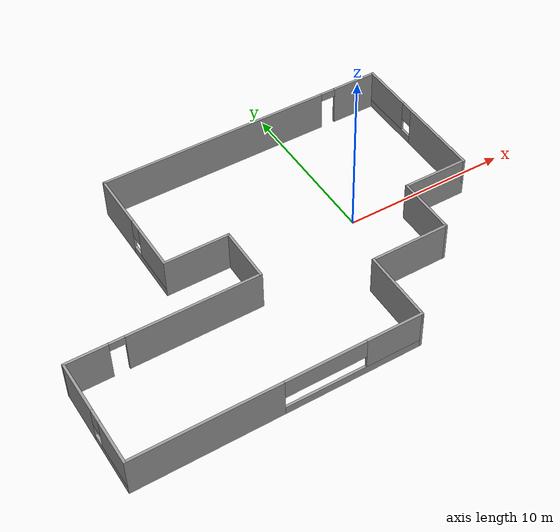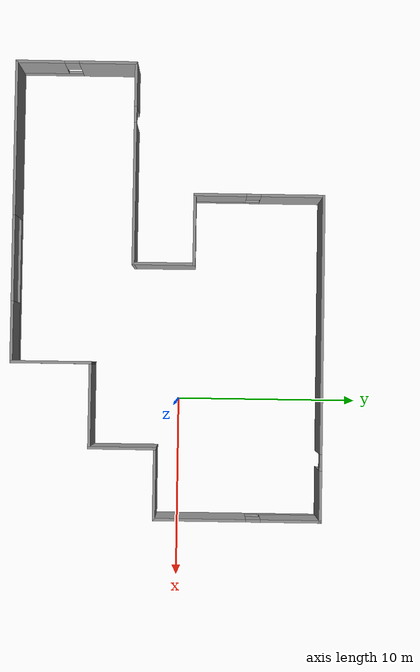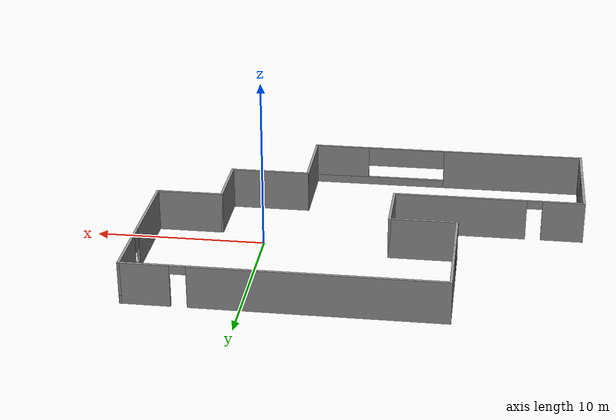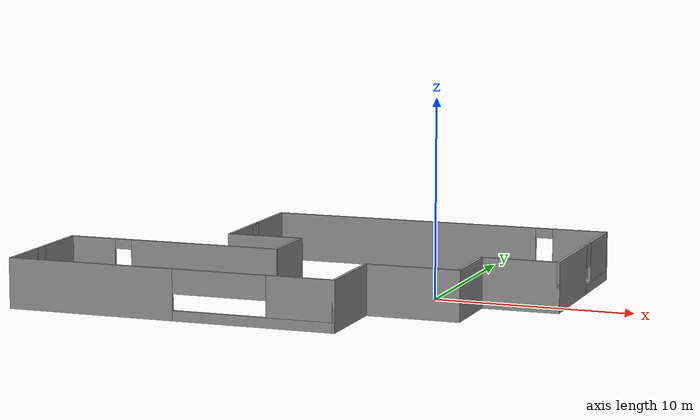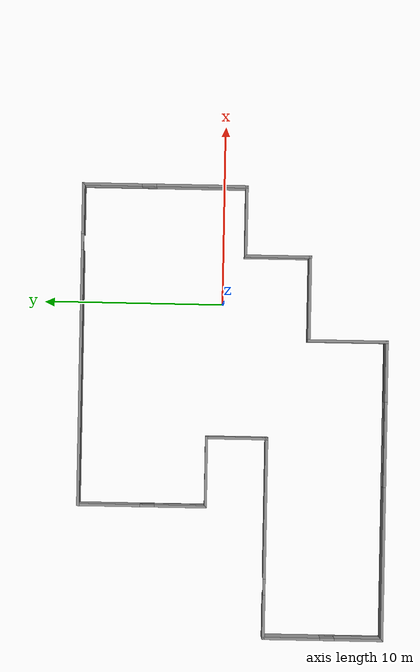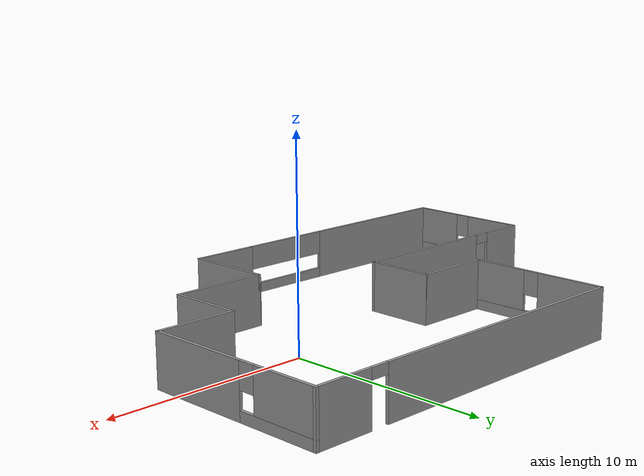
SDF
<?xml version='1.0'?>
<sdf version='1.7'>
  <model name='test'>
    <pose>-5.99 -0.635 0 0 -0 0</pose>
    <link name='Wall_0'>
      <collision name='Wall_0_Collision'>
        <geometry>
          <box>
            <size>4.75 0.15 2.5</size>
          </box>
        </geometry>
        <pose>0 0 1.25 0 -0 0</pose>
      </collision>
      <visual name='Wall_0_Visual'>
        <pose>0 0 1.25 0 -0 0</pose>
        <geometry>
          <box>
            <size>4.75 0.15 2.5</size>
          </box>
        </geometry>
        <material>
          <script>
            <uri>file://media/materials/scripts/gazebo.material</uri>
            <name>Gazebo/Grey</name>
          </script>
          <ambient>1 1 1 1</ambient>
        </material>
        <meta>
          <layer>0</layer>
        </meta>
      </visual>
      <pose>6.4 -4.175 0 0 -0 0</pose>
    </link>
    <link name='Wall_1'>
      <collision name='Wall_1_Collision'>
        <geometry>
          <box>
            <size>3.75 0.15 2.5</size>
          </box>
        </geometry>
        <pose>0 0 1.25 0 -0 0</pose>
      </collision>
      <visual name='Wall_1_Visual'>
        <pose>0 0 1.25 0 -0 0</pose>
        <geometry>
          <box>
            <size>3.75 0.15 2.5</size>
          </box>
        </geometry>
        <material>
          <script>
            <uri>file://media/materials/scripts/gazebo.material</uri>
            <name>Gazebo/Grey</name>
          </script>
          <ambient>1 1 1 1</ambient>
        </material>
        <meta>
          <layer>0</layer>
        </meta>
      </visual>
      <pose>8.7 -2.375 0 0 -0 1.5708</pose>
    </link>
    <link name='Wall_10'>
      <collision name='Wall_10_Collision'>
        <geometry>
          <box>
            <size>3.5 0.15 2.5</size>
          </box>
        </geometry>
        <pose>0 0 1.25 0 -0 0</pose>
      </collision>
      <visual name='Wall_10_Visual'>
        <pose>0 0 1.25 0 -0 0</pose>
        <geometry>
          <box>
            <size>3.5 0.15 2.5</size>
          </box>
        </geometry>
        <material>
          <script>
            <uri>file://media/materials/scripts/gazebo.material</uri>
            <name>Gazebo/Grey</name>
          </script>
          <ambient>1 1 1 1</ambient>
        </material>
        <meta>
          <layer>0</layer>
        </meta>
      </visual>
      <pose>-1.45 -0.25 0 0 -0 -1.5708</pose>
    </link>
    <link name='Wall_11'>
      <pose>-7 -1.925 0 0 -0 3.14159</pose>
      <visual name='Wall_11_Visual_0'>
        <pose>-1.69066 0 1.25 0 -0 0</pose>
        <geometry>
          <box>
            <size>7.86868 0.15 2.5</size>
          </box>
        </geometry>
        <material>
          <script>
            <uri>file://media/materials/scripts/gazebo.material</uri>
            <name>Gazebo/Grey</name>
          </script>
          <ambient>1 1 1 1</ambient>
        </material>
        <meta>
          <layer>0</layer>
        </meta>
      </visual>
      <collision name='Wall_11_Collision_0'>
        <geometry>
          <box>
            <size>7.86868 0.15 2.5</size>
          </box>
        </geometry>
        <pose>-1.69066 0 1.25 0 -0 0</pose>
      </collision>
      <visual name='Wall_11_Visual_1'>
        <pose>4.38434 0 1.25 0 -0 0</pose>
        <geometry>
          <box>
            <size>2.48132 0.15 2.5</size>
          </box>
        </geometry>
        <material>
          <script>
            <uri>file://media/materials/scripts/gazebo.material</uri>
            <name>Gazebo/Grey</name>
          </script>
          <ambient>1 1 1 1</ambient>
        </material>
        <meta>
          <layer>0</layer>
        </meta>
      </visual>
      <collision name='Wall_11_Collision_1'>
        <geometry>
          <box>
            <size>2.48132 0.15 2.5</size>
          </box>
        </geometry>
        <pose>4.38434 0 1.25 0 -0 0</pose>
      </collision>
      <visual name='Wall_11_Visual_2'>
        <pose>2.69368 0 2.25 0 -0 0</pose>
        <geometry>
          <box>
            <size>0.9 0.15 0.5</size>
          </box>
        </geometry>
        <material>
          <script>
            <uri>file://media/materials/scripts/gazebo.material</uri>
            <name>Gazebo/Grey</name>
          </script>
          <ambient>1 1 1 1</ambient>
        </material>
        <meta>
          <layer>0</layer>
        </meta>
      </visual>
      <collision name='Wall_11_Collision_2'>
        <geometry>
          <box>
            <size>0.9 0.15 0.5</size>
          </box>
        </geometry>
        <pose>2.69368 0 2.25 0 -0 0</pose>
      </collision>
    </link>
    <link name='Wall_12'>
      <pose>-12.55 -5.225 0 0 -0 -1.5708</pose>
      <visual name='Wall_12_Visual_0'>
        <pose>-1.76183 0 1.25 0 -0 0</pose>
        <geometry>
          <box>
            <size>3.22635 0.15 2.5</size>
          </box>
        </geometry>
        <material>
          <script>
            <uri>file://media/materials/scripts/gazebo.material</uri>
            <name>Gazebo/Grey</name>
          </script>
          <ambient>1 1 1 1</ambient>
        </material>
        <meta>
          <layer>0</layer>
        </meta>
      </visual>
      <collision name='Wall_12_Collision_0'>
        <geometry>
          <box>
            <size>3.22635 0.15 2.5</size>
          </box>
        </geometry>
        <pose>-1.76183 0 1.25 0 -0 0</pose>
      </collision>
      <visual name='Wall_12_Visual_1'>
        <pose>1.61317 0 0.25 0 -0 0</pose>
        <geometry>
          <box>
            <size>3.52365 0.15 0.5</size>
          </box>
        </geometry>
        <material>
          <script>
            <uri>file://media/materials/scripts/gazebo.material</uri>
            <name>Gazebo/Grey</name>
          </script>
          <ambient>1 1 1 1</ambient>
        </material>
        <meta>
          <layer>0</layer>
        </meta>
      </visual>
      <collision name='Wall_12_Collision_1'>
        <geometry>
          <box>
            <size>3.52365 0.15 0.5</size>
          </box>
        </geometry>
        <pose>1.61317 0 0.25 0 -0 0</pose>
      </collision>
      <visual name='Wall_12_Visual_2'>
        <pose>2.01317 0 1.5 0 -0 0</pose>
        <geometry>
          <box>
            <size>2.72365 0.15 2</size>
          </box>
        </geometry>
        <material>
          <script>
            <uri>file://media/materials/scripts/gazebo.material</uri>
            <name>Gazebo/Grey</name>
          </script>
          <ambient>1 1 1 1</ambient>
        </material>
        <meta>
          <layer>0</layer>
        </meta>
      </visual>
      <collision name='Wall_12_Collision_2'>
        <geometry>
          <box>
            <size>2.72365 0.15 2</size>
          </box>
        </geometry>
        <pose>2.01317 0 1.5 0 -0 0</pose>
      </collision>
      <visual name='Wall_12_Visual_3'>
        <pose>0.251346 0 1.9 0 -0 0</pose>
        <geometry>
          <box>
            <size>0.8 0.15 1.2</size>
          </box>
        </geometry>
        <material>
          <script>
            <uri>file://media/materials/scripts/gazebo.material</uri>
            <name>Gazebo/Grey</name>
          </script>
          <ambient>1 1 1 1</ambient>
        </material>
        <meta>
          <layer>0</layer>
        </meta>
      </visual>
      <collision name='Wall_12_Collision_3'>
        <geometry>
          <box>
            <size>0.8 0.15 1.2</size>
          </box>
        </geometry>
        <pose>0.251346 0 1.9 0 -0 0</pose>
      </collision>
    </link>
    <link name='Wall_13'>
      <pose>-4.25 -8.525 0 0 -0 0</pose>
      <visual name='Wall_13_Visual_0'>
        <pose>-4.08388 0 1.25 0 -0 0</pose>
        <geometry>
          <box>
            <size>8.58223 0.15 2.5</size>
          </box>
        </geometry>
        <material>
          <script>
            <uri>file://media/materials/scripts/gazebo.material</uri>
            <name>Gazebo/Grey</name>
          </script>
          <ambient>1 1 1 1</ambient>
        </material>
        <meta>
          <layer>0</layer>
        </meta>
      </visual>
      <collision name='Wall_13_Collision_0'>
        <geometry>
          <box>
            <size>8.58223 0.15 2.5</size>
          </box>
        </geometry>
        <pose>-4.08388 0 1.25 0 -0 0</pose>
      </collision>
      <visual name='Wall_13_Visual_1'>
        <pose>4.29112 0 0.25 0 -0 0</pose>
        <geometry>
          <box>
            <size>8.16777 0.15 0.5</size>
          </box>
        </geometry>
        <material>
          <script>
            <uri>file://media/materials/scripts/gazebo.material</uri>
            <name>Gazebo/Grey</name>
          </script>
          <ambient>1 1 1 1</ambient>
        </material>
        <meta>
          <layer>0</layer>
        </meta>
      </visual>
      <collision name='Wall_13_Collision_1'>
        <geometry>
          <box>
            <size>8.16777 0.15 0.5</size>
          </box>
        </geometry>
        <pose>4.29112 0 0.25 0 -0 0</pose>
      </collision>
      <visual name='Wall_13_Visual_2'>
        <pose>6.66878 0 1.5 0 -0 0</pose>
        <geometry>
          <box>
            <size>3.41243 0.15 2</size>
          </box>
        </geometry>
        <material>
          <script>
            <uri>file://media/materials/scripts/gazebo.material</uri>
            <name>Gazebo/Grey</name>
          </script>
          <ambient>1 1 1 1</ambient>
        </material>
        <meta>
          <layer>0</layer>
        </meta>
      </visual>
      <collision name='Wall_13_Collision_2'>
        <geometry>
          <box>
            <size>3.41243 0.15 2</size>
          </box>
        </geometry>
        <pose>6.66878 0 1.5 0 -0 0</pose>
      </collision>
      <visual name='Wall_13_Visual_3'>
        <pose>2.5849 0 1.9 0 -0 0</pose>
        <geometry>
          <box>
            <size>4.75533 0.15 1.2</size>
          </box>
        </geometry>
        <material>
          <script>
            <uri>file://media/materials/scripts/gazebo.material</uri>
            <name>Gazebo/Grey</name>
          </script>
          <ambient>1 1 1 1</ambient>
        </material>
        <meta>
          <layer>0</layer>
        </meta>
      </visual>
      <collision name='Wall_13_Collision_3'>
        <geometry>
          <box>
            <size>4.75533 0.15 1.2</size>
          </box>
        </geometry>
        <pose>2.5849 0 1.9 0 -0 0</pose>
      </collision>
    </link>
    <link name='Wall_14'>
      <collision name='Wall_14_Collision'>
        <geometry>
          <box>
            <size>4.5 0.15 2.5</size>
          </box>
        </geometry>
        <pose>0 0 1.25 0 -0 0</pose>
      </collision>
      <visual name='Wall_14_Visual'>
        <pose>0 0 1.25 0 -0 0</pose>
        <geometry>
          <box>
            <size>4.5 0.15 2.5</size>
          </box>
        </geometry>
        <material>
          <script>
            <uri>file://media/materials/scripts/gazebo.material</uri>
            <name>Gazebo/Grey</name>
          </script>
          <ambient>1 1 1 1</ambient>
        </material>
        <meta>
          <layer>0</layer>
        </meta>
      </visual>
      <pose>4.05 -6.35 0 0 -0 1.5708</pose>
    </link>
    <link name='Wall_2'>
      <collision name='Wall_2_Collision'>
        <geometry>
          <box>
            <size>4 0.15 2.5</size>
          </box>
        </geometry>
        <pose>0 0 1.25 0 -0 0</pose>
      </collision>
      <visual name='Wall_2_Visual'>
        <pose>0 0 1.25 0 -0 0</pose>
        <geometry>
          <box>
            <size>4 0.15 2.5</size>
          </box>
        </geometry>
        <material>
          <script>
            <uri>file://media/materials/scripts/gazebo.material</uri>
            <name>Gazebo/Grey</name>
          </script>
          <ambient>1 1 1 1</ambient>
        </material>
        <meta>
          <layer>0</layer>
        </meta>
      </visual>
      <pose>10.625 -0.575 0 0 -0 0</pose>
    </link>
    <link name='Wall_4'>
      <pose>12.55 3.975 0 0 -0 1.5708</pose>
      <visual name='Wall_4_Visual_0'>
        <pose>-2.06983 0 1.25 0 -0 0</pose>
        <geometry>
          <box>
            <size>5.11034 0.15 2.5</size>
          </box>
        </geometry>
        <material>
          <script>
            <uri>file://media/materials/scripts/gazebo.material</uri>
            <name>Gazebo/Grey</name>
          </script>
          <ambient>1 1 1 1</ambient>
        </material>
        <meta>
          <layer>0</layer>
        </meta>
      </visual>
      <collision name='Wall_4_Collision_0'>
        <geometry>
          <box>
            <size>5.11034 0.15 2.5</size>
          </box>
        </geometry>
        <pose>-2.06983 0 1.25 0 -0 0</pose>
      </collision>
      <visual name='Wall_4_Visual_1'>
        <pose>2.55517 0 0.25 0 -0 0</pose>
        <geometry>
          <box>
            <size>4.13966 0.15 0.5</size>
          </box>
        </geometry>
        <material>
          <script>
            <uri>file://media/materials/scripts/gazebo.material</uri>
            <name>Gazebo/Grey</name>
          </script>
          <ambient>1 1 1 1</ambient>
        </material>
        <meta>
          <layer>0</layer>
        </meta>
      </visual>
      <collision name='Wall_4_Collision_1'>
        <geometry>
          <box>
            <size>4.13966 0.15 0.5</size>
          </box>
        </geometry>
        <pose>2.55517 0 0.25 0 -0 0</pose>
      </collision>
      <visual name='Wall_4_Visual_2'>
        <pose>2.95517 0 1.5 0 -0 0</pose>
        <geometry>
          <box>
            <size>3.33966 0.15 2</size>
          </box>
        </geometry>
        <material>
          <script>
            <uri>file://media/materials/scripts/gazebo.material</uri>
            <name>Gazebo/Grey</name>
          </script>
          <ambient>1 1 1 1</ambient>
        </material>
        <meta>
          <layer>0</layer>
        </meta>
      </visual>
      <collision name='Wall_4_Collision_2'>
        <geometry>
          <box>
            <size>3.33966 0.15 2</size>
          </box>
        </geometry>
        <pose>2.95517 0 1.5 0 -0 0</pose>
      </collision>
      <visual name='Wall_4_Visual_3'>
        <pose>0.885338 0 1.9 0 -0 0</pose>
        <geometry>
          <box>
            <size>0.8 0.15 1.2</size>
          </box>
        </geometry>
        <material>
          <script>
            <uri>file://media/materials/scripts/gazebo.material</uri>
            <name>Gazebo/Grey</name>
          </script>
          <ambient>1 1 1 1</ambient>
        </material>
        <meta>
          <layer>0</layer>
        </meta>
      </visual>
      <collision name='Wall_4_Collision_3'>
        <geometry>
          <box>
            <size>0.8 0.15 1.2</size>
          </box>
        </geometry>
        <pose>0.885338 0 1.9 0 -0 0</pose>
      </collision>
    </link>
    <link name='Wall_7'>
      <pose>3.625 8.525 0 0 -0 3.14159</pose>
      <visual name='Wall_7_Visual_0'>
        <pose>-7.57172 0 1.25 0 -0 0</pose>
        <geometry>
          <box>
            <size>2.85657 0.15 2.5</size>
          </box>
        </geometry>
        <material>
          <script>
            <uri>file://media/materials/scripts/gazebo.material</uri>
            <name>Gazebo/Grey</name>
          </script>
          <ambient>1 1 1 1</ambient>
        </material>
        <meta>
          <layer>0</layer>
        </meta>
      </visual>
      <collision name='Wall_7_Collision_0'>
        <geometry>
          <box>
            <size>2.85657 0.15 2.5</size>
          </box>
        </geometry>
        <pose>-7.57172 0 1.25 0 -0 0</pose>
      </collision>
      <visual name='Wall_7_Visual_1'>
        <pose>1.87828 0 1.25 0 -0 0</pose>
        <geometry>
          <box>
            <size>14.2434 0.15 2.5</size>
          </box>
        </geometry>
        <material>
          <script>
            <uri>file://media/materials/scripts/gazebo.material</uri>
            <name>Gazebo/Grey</name>
          </script>
          <ambient>1 1 1 1</ambient>
        </material>
        <meta>
          <layer>0</layer>
        </meta>
      </visual>
      <collision name='Wall_7_Collision_1'>
        <geometry>
          <box>
            <size>14.2434 0.15 2.5</size>
          </box>
        </geometry>
        <pose>1.87828 0 1.25 0 -0 0</pose>
      </collision>
      <visual name='Wall_7_Visual_2'>
        <pose>-5.69343 0 2.25 0 -0 0</pose>
        <geometry>
          <box>
            <size>0.9 0.15 0.5</size>
          </box>
        </geometry>
        <material>
          <script>
            <uri>file://media/materials/scripts/gazebo.material</uri>
            <name>Gazebo/Grey</name>
          </script>
          <ambient>1 1 1 1</ambient>
        </material>
        <meta>
          <layer>0</layer>
        </meta>
      </visual>
      <collision name='Wall_7_Collision_2'>
        <geometry>
          <box>
            <size>0.9 0.15 0.5</size>
          </box>
        </geometry>
        <pose>-5.69343 0 2.25 0 -0 0</pose>
      </collision>
    </link>
    <link name='Wall_8'>
      <pose>-5.3 4.975 0 0 -0 -1.5708</pose>
      <visual name='Wall_8_Visual_0'>
        <pose>-1.86288 0 1.25 0 -0 0</pose>
        <geometry>
          <box>
            <size>3.52425 0.15 2.5</size>
          </box>
        </geometry>
        <material>
          <script>
            <uri>file://media/materials/scripts/gazebo.material</uri>
            <name>Gazebo/Grey</name>
          </script>
          <ambient>1 1 1 1</ambient>
        </material>
        <meta>
          <layer>0</layer>
        </meta>
      </visual>
      <collision name='Wall_8_Collision_0'>
        <geometry>
          <box>
            <size>3.52425 0.15 2.5</size>
          </box>
        </geometry>
        <pose>-1.86288 0 1.25 0 -0 0</pose>
      </collision>
      <visual name='Wall_8_Visual_1'>
        <pose>1.76212 0 0.25 0 -0 0</pose>
        <geometry>
          <box>
            <size>3.72575 0.15 0.5</size>
          </box>
        </geometry>
        <material>
          <script>
            <uri>file://media/materials/scripts/gazebo.material</uri>
            <name>Gazebo/Grey</name>
          </script>
          <ambient>1 1 1 1</ambient>
        </material>
        <meta>
          <layer>0</layer>
        </meta>
      </visual>
      <collision name='Wall_8_Collision_1'>
        <geometry>
          <box>
            <size>3.72575 0.15 0.5</size>
          </box>
        </geometry>
        <pose>1.76212 0 0.25 0 -0 0</pose>
      </collision>
      <visual name='Wall_8_Visual_2'>
        <pose>2.16212 0 1.5 0 -0 0</pose>
        <geometry>
          <box>
            <size>2.92575 0.15 2</size>
          </box>
        </geometry>
        <material>
          <script>
            <uri>file://media/materials/scripts/gazebo.material</uri>
            <name>Gazebo/Grey</name>
          </script>
          <ambient>1 1 1 1</ambient>
        </material>
        <meta>
          <layer>0</layer>
        </meta>
      </visual>
      <collision name='Wall_8_Collision_2'>
        <geometry>
          <box>
            <size>2.92575 0.15 2</size>
          </box>
        </geometry>
        <pose>2.16212 0 1.5 0 -0 0</pose>
      </collision>
      <visual name='Wall_8_Visual_3'>
        <pose>0.299246 0 1.9 0 -0 0</pose>
        <geometry>
          <box>
            <size>0.8 0.15 1.2</size>
          </box>
        </geometry>
        <material>
          <script>
            <uri>file://media/materials/scripts/gazebo.material</uri>
            <name>Gazebo/Grey</name>
          </script>
          <ambient>1 1 1 1</ambient>
        </material>
        <meta>
          <layer>0</layer>
        </meta>
      </visual>
      <collision name='Wall_8_Collision_3'>
        <geometry>
          <box>
            <size>0.8 0.15 1.2</size>
          </box>
        </geometry>
        <pose>0.299246 0 1.9 0 -0 0</pose>
      </collision>
    </link>
    <link name='Wall_9'>
      <collision name='Wall_9_Collision'>
        <geometry>
          <box>
            <size>4 0.15 2.5</size>
          </box>
        </geometry>
        <pose>0 0 1.25 0 -0 0</pose>
      </collision>
      <visual name='Wall_9_Visual'>
        <pose>0 0 1.25 0 -0 0</pose>
        <geometry>
          <box>
            <size>4 0.15 2.5</size>
          </box>
        </geometry>
        <material>
          <script>
            <uri>file://media/materials/scripts/gazebo.material</uri>
            <name>Gazebo/Grey</name>
          </script>
          <ambient>1 1 1 1</ambient>
        </material>
        <meta>
          <layer>0</layer>
        </meta>
      </visual>
      <pose>-3.375 1.425 0 0 -0 0</pose>
    </link>
    <static>1</static>
  </model>
</sdf>
